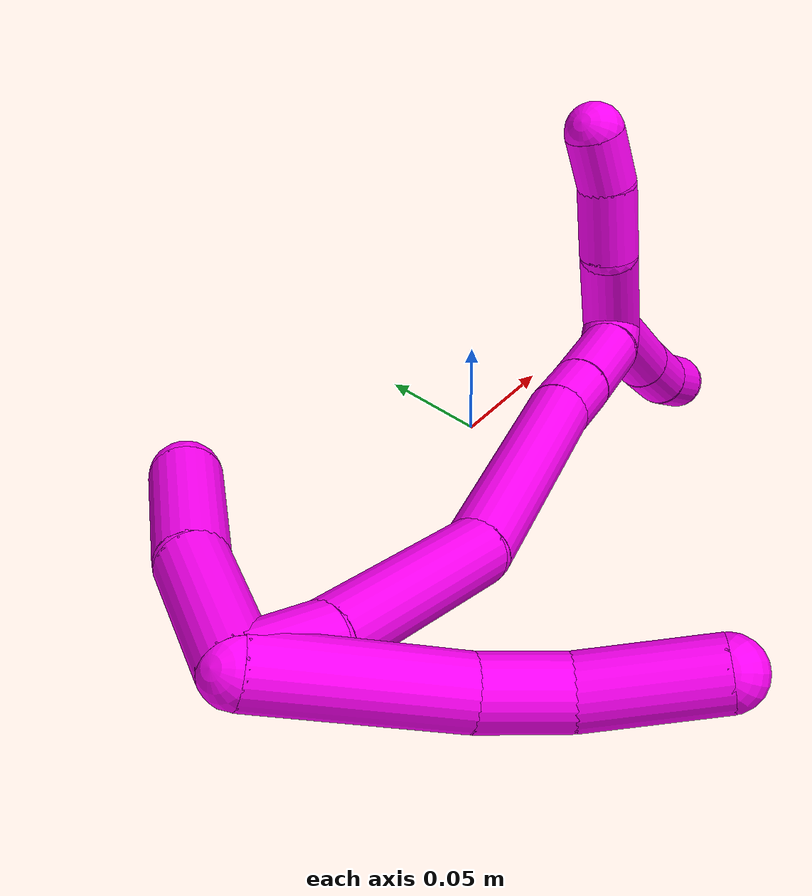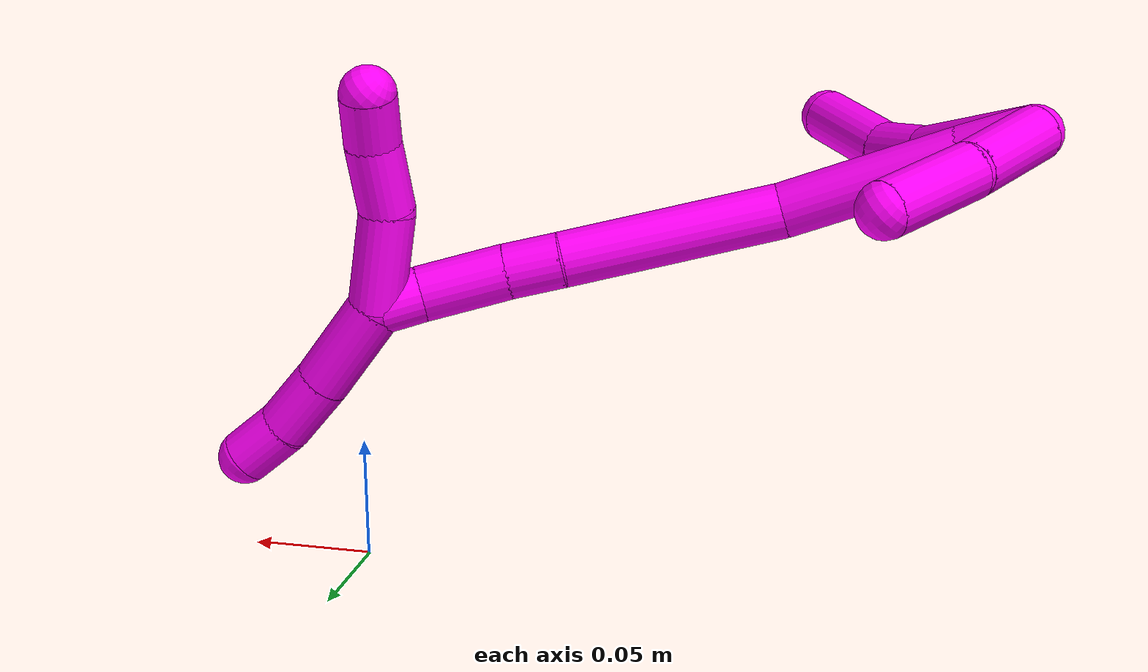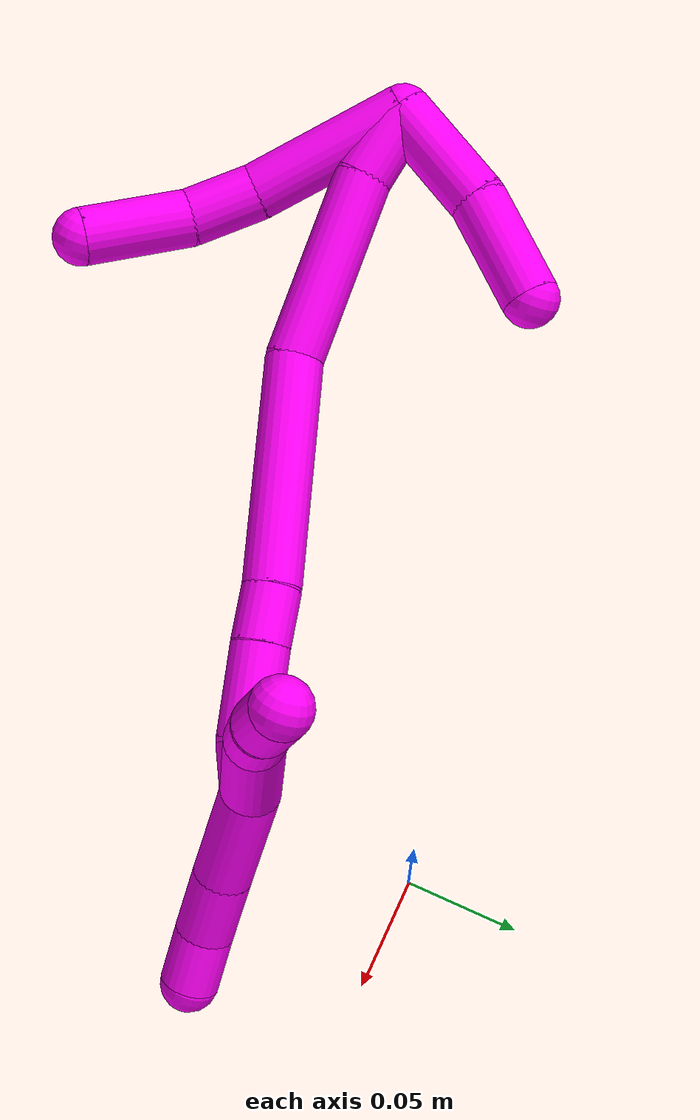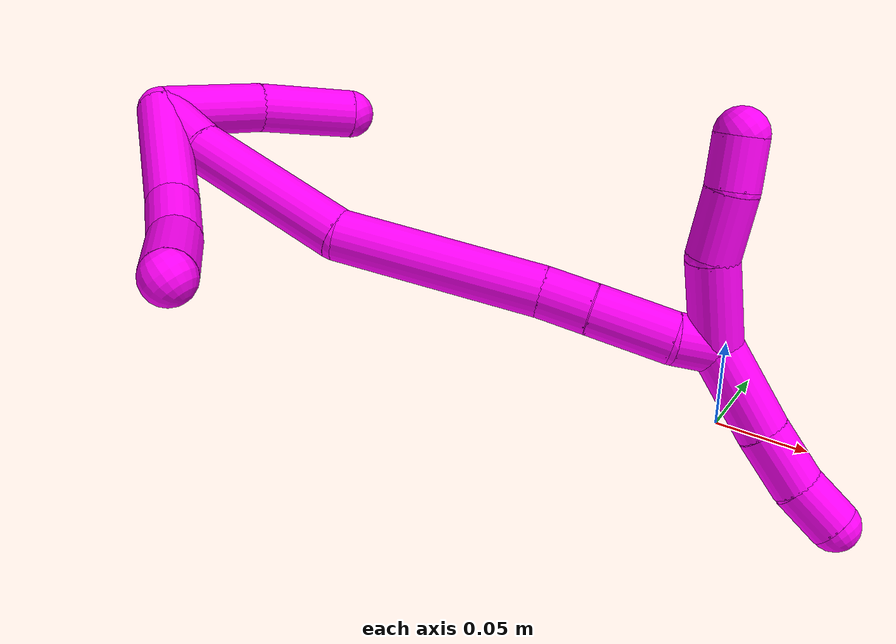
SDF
<sdf version="1.7">
 <world name="default">
  <model name="10">
   <static>0</static>
   <link name="10">
    <collision name="collision-cylinder-e_1_2_8">
     <pose>-0.00247 -0.02382 -0.02635 2.40656 -0.069436 -0.179934</pose>
     <geometry><cylinder><radius>0.0125</radius><length>0.071213</length></cylinder></geometry>
     <surface>
      <friction><ode><mu>1.16</mu><mu2>1.16</mu2><slip1>0</slip1><slip2>0</slip2></ode></friction>
      <contact><ode><kp>1e+06</kp><kd>1</kd><max_vel>0</max_vel><min_depth>0.001</min_depth></ode></contact>
     </surface>
    </collision>
    <visual name="visual-cylinder-e_1_2_8">
     <pose>-0.00247 -0.02382 -0.02635 2.40656 -0.069436 -0.179934</pose>
     <geometry><cylinder><radius>0.0125</radius><length>0.071213</length></cylinder></geometry>
     <material><ambient>1 0 0.964706 1</ambient></material>
    </visual>
    <collision name="collision-cylinder-e_2_8_9">
     <pose>-0.004509 -0.0597 -0.062379 2.2472 0.02793 0.058222</pose>
     <geometry><cylinder><radius>0.0125</radius><length>0.030939</length></cylinder></geometry>
     <surface>
      <friction><ode><mu>1.16</mu><mu2>1.16</mu2><slip1>0</slip1><slip2>0</slip2></ode></friction>
      <contact><ode><kp>1e+06</kp><kd>1</kd><max_vel>0</max_vel><min_depth>0.001</min_depth></ode></contact>
     </surface>
    </collision>
    <visual name="visual-cylinder-e_2_8_9">
     <pose>-0.004509 -0.0597 -0.062379 2.2472 0.02793 0.058222</pose>
     <geometry><cylinder><radius>0.0125</radius><length>0.030939</length></cylinder></geometry>
     <material><ambient>1 0 0.964706 1</ambient></material>
    </visual>
    <collision name="collision-cylinder-e_3_9_6">
     <pose>-0.000513 -0.093203 -0.08205 2.00679 0.149509 0.233959</pose>
     <geometry><cylinder><radius>0.0125</radius><length>0.047849</length></cylinder></geometry>
     <surface>
      <friction><ode><mu>1.16</mu><mu2>1.16</mu2><slip1>0</slip1><slip2>0</slip2></ode></friction>
      <contact><ode><kp>1e+06</kp><kd>1</kd><max_vel>0</max_vel><min_depth>0.001</min_depth></ode></contact>
     </surface>
    </collision>
    <visual name="visual-cylinder-e_3_9_6">
     <pose>-0.000513 -0.093203 -0.08205 2.00679 0.149509 0.233959</pose>
     <geometry><cylinder><radius>0.0125</radius><length>0.047849</length></cylinder></geometry>
     <material><ambient>1 0 0.964706 1</ambient></material>
    </visual>
    <collision name="collision-cylinder-e_1_2_10">
     <pose>0.016072 0.017452 -0.009836 -2.08399 0.676116 -1.08328</pose>
     <geometry><cylinder><radius>0.0125</radius><length>0.051366</length></cylinder></geometry>
     <surface>
      <friction><ode><mu>1.16</mu><mu2>1.16</mu2><slip1>0</slip1><slip2>0</slip2></ode></friction>
      <contact><ode><kp>1e+06</kp><kd>1</kd><max_vel>0</max_vel><min_depth>0.001</min_depth></ode></contact>
     </surface>
    </collision>
    <visual name="visual-cylinder-e_1_2_10">
     <pose>0.016072 0.017452 -0.009836 -2.08399 0.676116 -1.08328</pose>
     <geometry><cylinder><radius>0.0125</radius><length>0.051366</length></cylinder></geometry>
     <material><ambient>1 0 0.964706 1</ambient></material>
    </visual>
    <collision name="collision-cylinder-e_2_10_5">
     <pose>0.047731 0.048165 -0.032805 -2.3514 0.695824 -1.43158</pose>
     <geometry><cylinder><radius>0.0125</radius><length>0.048634</length></cylinder></geometry>
     <surface>
      <friction><ode><mu>1.16</mu><mu2>1.16</mu2><slip1>0</slip1><slip2>0</slip2></ode></friction>
      <contact><ode><kp>1e+06</kp><kd>1</kd><max_vel>0</max_vel><min_depth>0.001</min_depth></ode></contact>
     </surface>
    </collision>
    <visual name="visual-cylinder-e_2_10_5">
     <pose>0.047731 0.048165 -0.032805 -2.3514 0.695824 -1.43158</pose>
     <geometry><cylinder><radius>0.0125</radius><length>0.048634</length></cylinder></geometry>
     <material><ambient>1 0 0.964706 1</ambient></material>
    </visual>
    <collision name="collision-cylinder-e_1_2_11">
     <pose>0.004784 -0.004673 -0.015071 2.84092 0.294383 1.54936</pose>
     <geometry><cylinder><radius>0.0125</radius><length>0.032976</length></cylinder></geometry>
     <surface>
      <friction><ode><mu>1.16</mu><mu2>1.16</mu2><slip1>0</slip1><slip2>0</slip2></ode></friction>
      <contact><ode><kp>1e+06</kp><kd>1</kd><max_vel>0</max_vel><min_depth>0.001</min_depth></ode></contact>
     </surface>
    </collision>
    <visual name="visual-cylinder-e_1_2_11">
     <pose>0.004784 -0.004673 -0.015071 2.84092 0.294383 1.54936</pose>
     <geometry><cylinder><radius>0.0125</radius><length>0.032976</length></cylinder></geometry>
     <material><ambient>1 0 0.964706 1</ambient></material>
    </visual>
    <collision name="collision-cylinder-e_2_11_12">
     <pose>0.025921 -0.01405 -0.067983 3.01792 0.405114 2.55599</pose>
     <geometry><cylinder><radius>0.0125</radius><length>0.082983</length></cylinder></geometry>
     <surface>
      <friction><ode><mu>1.16</mu><mu2>1.16</mu2><slip1>0</slip1><slip2>0</slip2></ode></friction>
      <contact><ode><kp>1e+06</kp><kd>1</kd><max_vel>0</max_vel><min_depth>0.001</min_depth></ode></contact>
     </surface>
    </collision>
    <visual name="visual-cylinder-e_2_11_12">
     <pose>0.025921 -0.01405 -0.067983 3.01792 0.405114 2.55599</pose>
     <geometry><cylinder><radius>0.0125</radius><length>0.082983</length></cylinder></geometry>
     <material><ambient>1 0 0.964706 1</ambient></material>
    </visual>
    <collision name="collision-cylinder-e_3_12_13">
     <pose>0.073097 -0.014774 -0.144898 -3.04009 0.665421 -2.84969</pose>
     <geometry><cylinder><radius>0.0125</radius><length>0.099853</length></cylinder></geometry>
     <surface>
      <friction><ode><mu>1.16</mu><mu2>1.16</mu2><slip1>0</slip1><slip2>0</slip2></ode></friction>
      <contact><ode><kp>1e+06</kp><kd>1</kd><max_vel>0</max_vel><min_depth>0.001</min_depth></ode></contact>
     </surface>
    </collision>
    <visual name="visual-cylinder-e_3_12_13">
     <pose>0.073097 -0.014774 -0.144898 -3.04009 0.665421 -2.84969</pose>
     <geometry><cylinder><radius>0.0125</radius><length>0.099853</length></cylinder></geometry>
     <material><ambient>1 0 0.964706 1</ambient></material>
    </visual>
    <collision name="collision-cylinder-e_4_13_14">
     <pose>0.110953 -0.010836 -0.193945 3.13743 0.614032 3.12847</pose>
     <geometry><cylinder><radius>0.0125</radius><length>0.024407</length></cylinder></geometry>
     <surface>
      <friction><ode><mu>1.16</mu><mu2>1.16</mu2><slip1>0</slip1><slip2>0</slip2></ode></friction>
      <contact><ode><kp>1e+06</kp><kd>1</kd><max_vel>0</max_vel><min_depth>0.001</min_depth></ode></contact>
     </surface>
    </collision>
    <visual name="visual-cylinder-e_4_13_14">
     <pose>0.110953 -0.010836 -0.193945 3.13743 0.614032 3.12847</pose>
     <geometry><cylinder><radius>0.0125</radius><length>0.024407</length></cylinder></geometry>
     <material><ambient>1 0 0.964706 1</ambient></material>
    </visual>
    <collision name="collision-cylinder-e_5_14_15">
     <pose>0.129152 -0.009844 -0.220209 -3.07826 0.60003 -2.9375</pose>
     <geometry><cylinder><radius>0.0125</radius><length>0.039554</length></cylinder></geometry>
     <surface>
      <friction><ode><mu>1.16</mu><mu2>1.16</mu2><slip1>0</slip1><slip2>0</slip2></ode></friction>
      <contact><ode><kp>1e+06</kp><kd>1</kd><max_vel>0</max_vel><min_depth>0.001</min_depth></ode></contact>
     </surface>
    </collision>
    <visual name="visual-cylinder-e_5_14_15">
     <pose>0.129152 -0.009844 -0.220209 -3.07826 0.60003 -2.9375</pose>
     <geometry><cylinder><radius>0.0125</radius><length>0.039554</length></cylinder></geometry>
     <material><ambient>1 0 0.964706 1</ambient></material>
    </visual>
    <collision name="collision-cylinder-e_6_15_1">
     <pose>0.146793 -0.006251 -0.243835 -2.80587 0.694618 -2.26593</pose>
     <geometry><cylinder><radius>0.0125</radius><length>0.020227</length></cylinder></geometry>
     <surface>
      <friction><ode><mu>1.16</mu><mu2>1.16</mu2><slip1>0</slip1><slip2>0</slip2></ode></friction>
      <contact><ode><kp>1e+06</kp><kd>1</kd><max_vel>0</max_vel><min_depth>0.001</min_depth></ode></contact>
     </surface>
    </collision>
    <visual name="visual-cylinder-e_6_15_1">
     <pose>0.146793 -0.006251 -0.243835 -2.80587 0.694618 -2.26593</pose>
     <geometry><cylinder><radius>0.0125</radius><length>0.020227</length></cylinder></geometry>
     <material><ambient>1 0 0.964706 1</ambient></material>
    </visual>
    <collision name="collision-cylinder-e_1_1_16">
     <pose>0.16473 -0.010752 -0.233528 0.380701 0.542771 0.107126</pose>
     <geometry><cylinder><radius>0.0125</radius><length>0.044386</length></cylinder></geometry>
     <surface>
      <friction><ode><mu>1.16</mu><mu2>1.16</mu2><slip1>0</slip1><slip2>0</slip2></ode></friction>
      <contact><ode><kp>1e+06</kp><kd>1</kd><max_vel>0</max_vel><min_depth>0.001</min_depth></ode></contact>
     </surface>
    </collision>
    <visual name="visual-cylinder-e_1_1_16">
     <pose>0.16473 -0.010752 -0.233528 0.380701 0.542771 0.107126</pose>
     <geometry><cylinder><radius>0.0125</radius><length>0.044386</length></cylinder></geometry>
     <material><ambient>1 0 0.964706 1</ambient></material>
    </visual>
    <collision name="collision-cylinder-e_2_16_17">
     <pose>0.188224 -0.02152 -0.20615 0.363754 0.857173 0.167666</pose>
     <geometry><cylinder><radius>0.0125</radius><length>0.031829</length></cylinder></geometry>
     <surface>
      <friction><ode><mu>1.16</mu><mu2>1.16</mu2><slip1>0</slip1><slip2>0</slip2></ode></friction>
      <contact><ode><kp>1e+06</kp><kd>1</kd><max_vel>0</max_vel><min_depth>0.001</min_depth></ode></contact>
     </surface>
    </collision>
    <visual name="visual-cylinder-e_2_16_17">
     <pose>0.188224 -0.02152 -0.20615 0.363754 0.857173 0.167666</pose>
     <geometry><cylinder><radius>0.0125</radius><length>0.031829</length></cylinder></geometry>
     <material><ambient>1 0 0.964706 1</ambient></material>
    </visual>
    <collision name="collision-cylinder-e_3_17_4">
     <pose>0.208624 -0.026132 -0.188013 0.107397 0.780571 0.044217</pose>
     <geometry><cylinder><radius>0.0125</radius><length>0.023784</length></cylinder></geometry>
     <surface>
      <friction><ode><mu>1.16</mu><mu2>1.16</mu2><slip1>0</slip1><slip2>0</slip2></ode></friction>
      <contact><ode><kp>1e+06</kp><kd>1</kd><max_vel>0</max_vel><min_depth>0.001</min_depth></ode></contact>
     </surface>
    </collision>
    <visual name="visual-cylinder-e_3_17_4">
     <pose>0.208624 -0.026132 -0.188013 0.107397 0.780571 0.044217</pose>
     <geometry><cylinder><radius>0.0125</radius><length>0.023784</length></cylinder></geometry>
     <material><ambient>1 0 0.964706 1</ambient></material>
    </visual>
    <collision name="collision-cylinder-e_1_1_18">
     <pose>0.150206 -0.001536 -0.273404 -3.04496 -0.136176 1.90801</pose>
     <geometry><cylinder><radius>0.0125</radius><length>0.04509</length></cylinder></geometry>
     <surface>
      <friction><ode><mu>1.16</mu><mu2>1.16</mu2><slip1>0</slip1><slip2>0</slip2></ode></friction>
      <contact><ode><kp>1e+06</kp><kd>1</kd><max_vel>0</max_vel><min_depth>0.001</min_depth></ode></contact>
     </surface>
    </collision>
    <visual name="visual-cylinder-e_1_1_18">
     <pose>0.150206 -0.001536 -0.273404 -3.04496 -0.136176 1.90801</pose>
     <geometry><cylinder><radius>0.0125</radius><length>0.04509</length></cylinder></geometry>
     <material><ambient>1 0 0.964706 1</ambient></material>
    </visual>
    <collision name="collision-cylinder-e_2_18_19">
     <pose>0.146043 0.001976 -0.310628 -3.05132 -0.073092 1.36103</pose>
     <geometry><cylinder><radius>0.0125</radius><length>0.030187</length></cylinder></geometry>
     <surface>
      <friction><ode><mu>1.16</mu><mu2>1.16</mu2><slip1>0</slip1><slip2>0</slip2></ode></friction>
      <contact><ode><kp>1e+06</kp><kd>1</kd><max_vel>0</max_vel><min_depth>0.001</min_depth></ode></contact>
     </surface>
    </collision>
    <visual name="visual-cylinder-e_2_18_19">
     <pose>0.146043 0.001976 -0.310628 -3.05132 -0.073092 1.36103</pose>
     <geometry><cylinder><radius>0.0125</radius><length>0.030187</length></cylinder></geometry>
     <material><ambient>1 0 0.964706 1</ambient></material>
    </visual>
    <collision name="collision-cylinder-e_3_19_3">
     <pose>0.146335 0.00398 -0.337885 -3.0889 0.112998 -2.26953</pose>
     <geometry><cylinder><radius>0.0125</radius><length>0.024723</length></cylinder></geometry>
     <surface>
      <friction><ode><mu>1.16</mu><mu2>1.16</mu2><slip1>0</slip1><slip2>0</slip2></ode></friction>
      <contact><ode><kp>1e+06</kp><kd>1</kd><max_vel>0</max_vel><min_depth>0.001</min_depth></ode></contact>
     </surface>
    </collision>
    <visual name="visual-cylinder-e_3_19_3">
     <pose>0.146335 0.00398 -0.337885 -3.0889 0.112998 -2.26953</pose>
     <geometry><cylinder><radius>0.0125</radius><length>0.024723</length></cylinder></geometry>
     <material><ambient>1 0 0.964706 1</ambient></material>
    </visual>
    <collision name="collision-sphere-3">
     <pose>0.147729 0.004627 -0.350151 0 -0 0</pose>
     <geometry><sphere><radius>0.0125</radius></sphere></geometry>
     <surface>
      <friction><ode><mu>1.16</mu><mu2>1.16</mu2><slip1>0</slip1><slip2>0</slip2></ode></friction>
      <contact><ode><kp>1e+06</kp><kd>1</kd><max_vel>0</max_vel><min_depth>0.001</min_depth></ode></contact>
     </surface>
    </collision>
    <visual name="visual-sphere-3">
     <pose>0.147729 0.004627 -0.350151 0 -0 0</pose>
     <geometry><sphere><radius>0.0125</radius></sphere></geometry>
     <material><ambient>1 0 0.964706 1</ambient></material>
    </visual>
    <collision name="collision-sphere-19">
     <pose>0.144941 0.003333 -0.32562 0 -0 0</pose>
     <geometry><sphere><radius>0.0125</radius></sphere></geometry>
     <surface>
      <friction><ode><mu>1.16</mu><mu2>1.16</mu2><slip1>0</slip1><slip2>0</slip2></ode></friction>
      <contact><ode><kp>1e+06</kp><kd>1</kd><max_vel>0</max_vel><min_depth>0.001</min_depth></ode></contact>
     </surface>
    </collision>
    <visual name="visual-sphere-19">
     <pose>0.144941 0.003333 -0.32562 0 -0 0</pose>
     <geometry><sphere><radius>0.0125</radius></sphere></geometry>
     <material><ambient>1 0 0.964706 1</ambient></material>
    </visual>
    <collision name="collision-sphere-5">
     <pose>0.063318 0.061426 -0.045939 0 -0 0</pose>
     <geometry><sphere><radius>0.0125</radius></sphere></geometry>
     <surface>
      <friction><ode><mu>1.16</mu><mu2>1.16</mu2><slip1>0</slip1><slip2>0</slip2></ode></friction>
      <contact><ode><kp>1e+06</kp><kd>1</kd><max_vel>0</max_vel><min_depth>0.001</min_depth></ode></contact>
     </surface>
    </collision>
    <visual name="visual-sphere-5">
     <pose>0.063318 0.061426 -0.045939 0 -0 0</pose>
     <geometry><sphere><radius>0.0125</radius></sphere></geometry>
     <material><ambient>1 0 0.964706 1</ambient></material>
    </visual>
    <collision name="collision-sphere-10">
     <pose>0.032143 0.034905 -0.019671 0 -0 0</pose>
     <geometry><sphere><radius>0.0125</radius></sphere></geometry>
     <surface>
      <friction><ode><mu>1.16</mu><mu2>1.16</mu2><slip1>0</slip1><slip2>0</slip2></ode></friction>
      <contact><ode><kp>1e+06</kp><kd>1</kd><max_vel>0</max_vel><min_depth>0.001</min_depth></ode></contact>
     </surface>
    </collision>
    <visual name="visual-sphere-10">
     <pose>0.032143 0.034905 -0.019671 0 -0 0</pose>
     <geometry><sphere><radius>0.0125</radius></sphere></geometry>
     <material><ambient>1 0 0.964706 1</ambient></material>
    </visual>
    <collision name="collision-sphere-6">
     <pose>0.00305 -0.114647 -0.09204 0 -0 0</pose>
     <geometry><sphere><radius>0.0125</radius></sphere></geometry>
     <surface>
      <friction><ode><mu>1.16</mu><mu2>1.16</mu2><slip1>0</slip1><slip2>0</slip2></ode></friction>
      <contact><ode><kp>1e+06</kp><kd>1</kd><max_vel>0</max_vel><min_depth>0.001</min_depth></ode></contact>
     </surface>
    </collision>
    <visual name="visual-sphere-6">
     <pose>0.00305 -0.114647 -0.09204 0 -0 0</pose>
     <geometry><sphere><radius>0.0125</radius></sphere></geometry>
     <material><ambient>1 0 0.964706 1</ambient></material>
    </visual>
    <collision name="collision-sphere-9">
     <pose>-0.004077 -0.071758 -0.072059 0 -0 0</pose>
     <geometry><sphere><radius>0.0125</radius></sphere></geometry>
     <surface>
      <friction><ode><mu>1.16</mu><mu2>1.16</mu2><slip1>0</slip1><slip2>0</slip2></ode></friction>
      <contact><ode><kp>1e+06</kp><kd>1</kd><max_vel>0</max_vel><min_depth>0.001</min_depth></ode></contact>
     </surface>
    </collision>
    <visual name="visual-sphere-9">
     <pose>-0.004077 -0.071758 -0.072059 0 -0 0</pose>
     <geometry><sphere><radius>0.0125</radius></sphere></geometry>
     <material><ambient>1 0 0.964706 1</ambient></material>
    </visual>
    <collision name="collision-sphere-2">
     <geometry><sphere><radius>0.0125</radius></sphere></geometry>
     <surface>
      <friction><ode><mu>1.16</mu><mu2>1.16</mu2><slip1>0</slip1><slip2>0</slip2></ode></friction>
      <contact><ode><kp>1e+06</kp><kd>1</kd><max_vel>0</max_vel><min_depth>0.001</min_depth></ode></contact>
     </surface>
    </collision>
    <visual name="visual-sphere-2">
     <geometry><sphere><radius>0.0125</radius></sphere></geometry>
     <material><ambient>1 0 0.964706 1</ambient></material>
    </visual>
    <collision name="collision-sphere-8">
     <pose>-0.004941 -0.047641 -0.052699 0 -0 0</pose>
     <geometry><sphere><radius>0.0125</radius></sphere></geometry>
     <surface>
      <friction><ode><mu>1.16</mu><mu2>1.16</mu2><slip1>0</slip1><slip2>0</slip2></ode></friction>
      <contact><ode><kp>1e+06</kp><kd>1</kd><max_vel>0</max_vel><min_depth>0.001</min_depth></ode></contact>
     </surface>
    </collision>
    <visual name="visual-sphere-8">
     <pose>-0.004941 -0.047641 -0.052699 0 -0 0</pose>
     <geometry><sphere><radius>0.0125</radius></sphere></geometry>
     <material><ambient>1 0 0.964706 1</ambient></material>
    </visual>
    <collision name="collision-sphere-11">
     <pose>0.009568 -0.009346 -0.030141 0 -0 0</pose>
     <geometry><sphere><radius>0.0125</radius></sphere></geometry>
     <surface>
      <friction><ode><mu>1.16</mu><mu2>1.16</mu2><slip1>0</slip1><slip2>0</slip2></ode></friction>
      <contact><ode><kp>1e+06</kp><kd>1</kd><max_vel>0</max_vel><min_depth>0.001</min_depth></ode></contact>
     </surface>
    </collision>
    <visual name="visual-sphere-11">
     <pose>0.009568 -0.009346 -0.030141 0 -0 0</pose>
     <geometry><sphere><radius>0.0125</radius></sphere></geometry>
     <material><ambient>1 0 0.964706 1</ambient></material>
    </visual>
    <collision name="collision-sphere-12">
     <pose>0.042273 -0.018754 -0.105825 0 -0 0</pose>
     <geometry><sphere><radius>0.0125</radius></sphere></geometry>
     <surface>
      <friction><ode><mu>1.16</mu><mu2>1.16</mu2><slip1>0</slip1><slip2>0</slip2></ode></friction>
      <contact><ode><kp>1e+06</kp><kd>1</kd><max_vel>0</max_vel><min_depth>0.001</min_depth></ode></contact>
     </surface>
    </collision>
    <visual name="visual-sphere-12">
     <pose>0.042273 -0.018754 -0.105825 0 -0 0</pose>
     <geometry><sphere><radius>0.0125</radius></sphere></geometry>
     <material><ambient>1 0 0.964706 1</ambient></material>
    </visual>
    <collision name="collision-sphere-13">
     <pose>0.103922 -0.010794 -0.183971 0 -0 0</pose>
     <geometry><sphere><radius>0.0125</radius></sphere></geometry>
     <surface>
      <friction><ode><mu>1.16</mu><mu2>1.16</mu2><slip1>0</slip1><slip2>0</slip2></ode></friction>
      <contact><ode><kp>1e+06</kp><kd>1</kd><max_vel>0</max_vel><min_depth>0.001</min_depth></ode></contact>
     </surface>
    </collision>
    <visual name="visual-sphere-13">
     <pose>0.103922 -0.010794 -0.183971 0 -0 0</pose>
     <geometry><sphere><radius>0.0125</radius></sphere></geometry>
     <material><ambient>1 0 0.964706 1</ambient></material>
    </visual>
    <collision name="collision-sphere-14">
     <pose>0.117984 -0.010877 -0.203919 0 -0 0</pose>
     <geometry><sphere><radius>0.0125</radius></sphere></geometry>
     <surface>
      <friction><ode><mu>1.16</mu><mu2>1.16</mu2><slip1>0</slip1><slip2>0</slip2></ode></friction>
      <contact><ode><kp>1e+06</kp><kd>1</kd><max_vel>0</max_vel><min_depth>0.001</min_depth></ode></contact>
     </surface>
    </collision>
    <visual name="visual-sphere-14">
     <pose>0.117984 -0.010877 -0.203919 0 -0 0</pose>
     <geometry><sphere><radius>0.0125</radius></sphere></geometry>
     <material><ambient>1 0 0.964706 1</ambient></material>
    </visual>
    <collision name="collision-sphere-15">
     <pose>0.140319 -0.008811 -0.236499 0 -0 0</pose>
     <geometry><sphere><radius>0.0125</radius></sphere></geometry>
     <surface>
      <friction><ode><mu>1.16</mu><mu2>1.16</mu2><slip1>0</slip1><slip2>0</slip2></ode></friction>
      <contact><ode><kp>1e+06</kp><kd>1</kd><max_vel>0</max_vel><min_depth>0.001</min_depth></ode></contact>
     </surface>
    </collision>
    <visual name="visual-sphere-15">
     <pose>0.140319 -0.008811 -0.236499 0 -0 0</pose>
     <geometry><sphere><radius>0.0125</radius></sphere></geometry>
     <material><ambient>1 0 0.964706 1</ambient></material>
    </visual>
    <collision name="collision-sphere-1">
     <pose>0.153267 -0.003691 -0.251172 0 -0 0</pose>
     <geometry><sphere><radius>0.0125</radius></sphere></geometry>
     <surface>
      <friction><ode><mu>1.16</mu><mu2>1.16</mu2><slip1>0</slip1><slip2>0</slip2></ode></friction>
      <contact><ode><kp>1e+06</kp><kd>1</kd><max_vel>0</max_vel><min_depth>0.001</min_depth></ode></contact>
     </surface>
    </collision>
    <visual name="visual-sphere-1">
     <pose>0.153267 -0.003691 -0.251172 0 -0 0</pose>
     <geometry><sphere><radius>0.0125</radius></sphere></geometry>
     <material><ambient>1 0 0.964706 1</ambient></material>
    </visual>
    <collision name="collision-sphere-18">
     <pose>0.147145 0.000619 -0.295636 0 -0 0</pose>
     <geometry><sphere><radius>0.0125</radius></sphere></geometry>
     <surface>
      <friction><ode><mu>1.16</mu><mu2>1.16</mu2><slip1>0</slip1><slip2>0</slip2></ode></friction>
      <contact><ode><kp>1e+06</kp><kd>1</kd><max_vel>0</max_vel><min_depth>0.001</min_depth></ode></contact>
     </surface>
    </collision>
    <visual name="visual-sphere-18">
     <pose>0.147145 0.000619 -0.295636 0 -0 0</pose>
     <geometry><sphere><radius>0.0125</radius></sphere></geometry>
     <material><ambient>1 0 0.964706 1</ambient></material>
    </visual>
    <collision name="collision-sphere-16">
     <pose>0.176193 -0.017814 -0.215885 0 -0 0</pose>
     <geometry><sphere><radius>0.0125</radius></sphere></geometry>
     <surface>
      <friction><ode><mu>1.16</mu><mu2>1.16</mu2><slip1>0</slip1><slip2>0</slip2></ode></friction>
      <contact><ode><kp>1e+06</kp><kd>1</kd><max_vel>0</max_vel><min_depth>0.001</min_depth></ode></contact>
     </surface>
    </collision>
    <visual name="visual-sphere-16">
     <pose>0.176193 -0.017814 -0.215885 0 -0 0</pose>
     <geometry><sphere><radius>0.0125</radius></sphere></geometry>
     <material><ambient>1 0 0.964706 1</ambient></material>
    </visual>
    <collision name="collision-sphere-17">
     <pose>0.200255 -0.025226 -0.196414 0 -0 0</pose>
     <geometry><sphere><radius>0.0125</radius></sphere></geometry>
     <surface>
      <friction><ode><mu>1.16</mu><mu2>1.16</mu2><slip1>0</slip1><slip2>0</slip2></ode></friction>
      <contact><ode><kp>1e+06</kp><kd>1</kd><max_vel>0</max_vel><min_depth>0.001</min_depth></ode></contact>
     </surface>
    </collision>
    <visual name="visual-sphere-17">
     <pose>0.200255 -0.025226 -0.196414 0 -0 0</pose>
     <geometry><sphere><radius>0.0125</radius></sphere></geometry>
     <material><ambient>1 0 0.964706 1</ambient></material>
    </visual>
    <collision name="collision-sphere-4">
     <pose>0.216992 -0.027038 -0.179612 0 -0 0</pose>
     <geometry><sphere><radius>0.0125</radius></sphere></geometry>
     <surface>
      <friction><ode><mu>1.16</mu><mu2>1.16</mu2><slip1>0</slip1><slip2>0</slip2></ode></friction>
      <contact><ode><kp>1e+06</kp><kd>1</kd><max_vel>0</max_vel><min_depth>0.001</min_depth></ode></contact>
     </surface>
    </collision>
    <visual name="visual-sphere-4">
     <pose>0.216992 -0.027038 -0.179612 0 -0 0</pose>
     <geometry><sphere><radius>0.0125</radius></sphere></geometry>
     <material><ambient>1 0 0.964706 1</ambient></material>
    </visual>
    <inertial>
     <pose>0.075019 -0.013379 -0.133697 0 -0 0</pose>
     <mass>0.75</mass>
     <inertia>
      <ixx>-3.1e-05</ixx>
      <ixy>0</ixy>
      <ixz>0</ixz>
      <iyy>0.000127</iyy>
      <iyz>0</iyz>
      <izz>-0.000115</izz>
     </inertia>
    </inertial>
   </link>
   <pose>-0.260857 -0.12486 0.165527 -0.489085 -0.664222 0.650367</pose>
  </model>
 </world>
</sdf>
